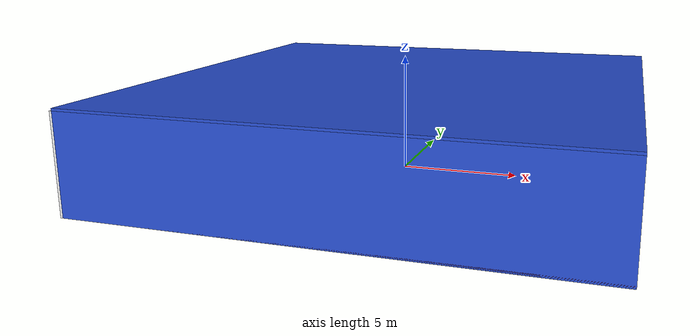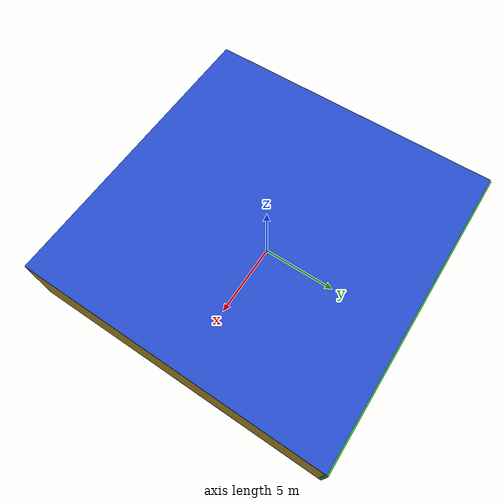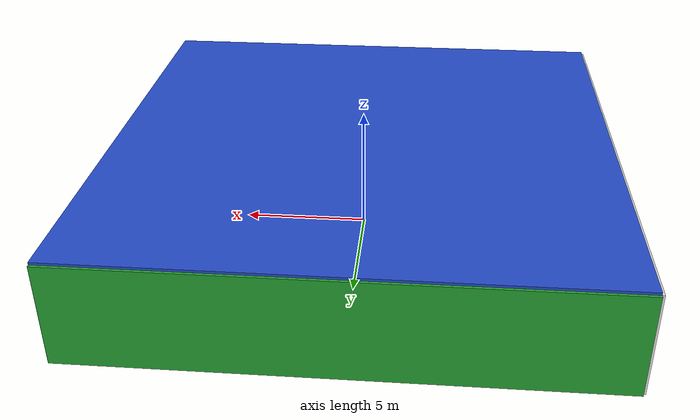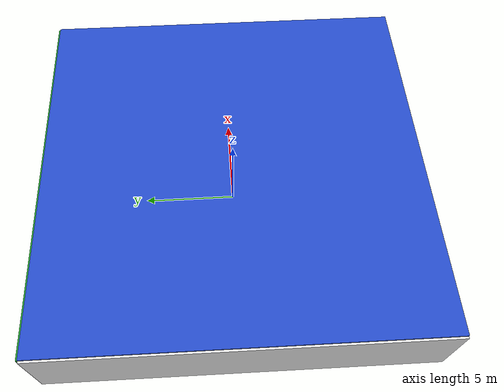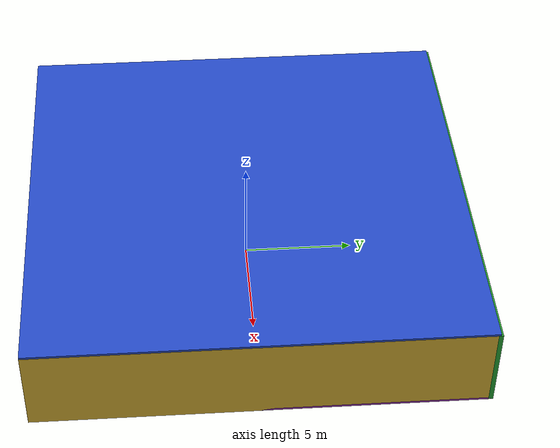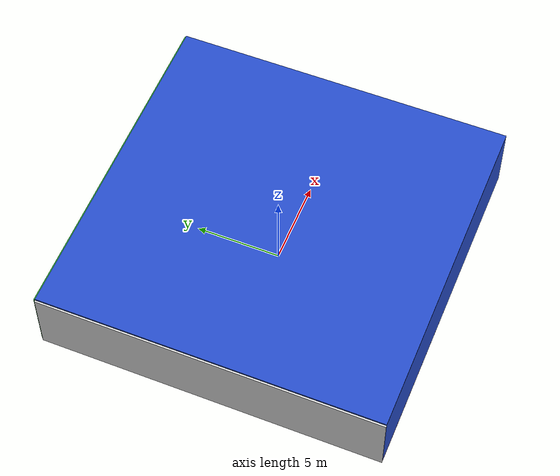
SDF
<sdf version="1.4">
 <world name="default">
  <physics type="ode">
   <max_step_size>0.001</max_step_size>
   <real_time_factor>1</real_time_factor>
   <real_time_update_rate>1000</real_time_update_rate>
   <gravity>0 0 -9.8</gravity>
  </physics>
  <scene><ambient>0.4 0.4 0.4 1</ambient><background>0.7 0.7 0.7 1</background><shadows>1</shadows></scene>
  <model name="Surrounding">
   <static>1</static>
   <link name="Ceiling">
    <collision name="Ceiling_Collision"><geometry><box><size>20 20 0.1</size></box></geometry></collision>
    <visual name="Ceiling_Visual">
     <geometry><box><size>20 20 0.1</size></box></geometry>
     <material>
      <script><uri>file://media/materials/scripts/gazebo.material</uri><name>Gazebo/BlueLaser</name></script>
     </material>
    </visual>
    <pose>0 0 4.05 0 0 0</pose>
   </link>
   <link name="Wall_South">
    <collision name="Wall_South_Collision">
     <geometry><box><size>20 0 4</size></box></geometry>
     <pose>0 0 2 0 -0 0</pose>
    </collision>
    <visual name="Wall_South_Visual">
     <pose>0 0 2 0 -0 0</pose>
     <geometry><box><size>20 0 4</size></box></geometry>
     <material>
      <script><uri>file://media/materials/scripts/gazebo.material</uri><name>Gazebo/BlueGlow</name></script>
     </material>
    </visual>
    <velocity_decay><linear>0</linear><angular>0</angular></velocity_decay>
    <pose>0 -10 0 0 -0 0</pose>
   </link>
   <link name="Wall_East">
    <collision name="Wall_21_Collision">
     <geometry><box><size>20 0 4</size></box></geometry>
     <pose>0 0 2 0 -0 0</pose>
    </collision>
    <visual name="Wall_21_Visual">
     <pose>0 0 2 0 -0 0</pose>
     <geometry><box><size>20 0 4</size></box></geometry>
     <material>
      <script><uri>file://media/materials/scripts/gazebo.material</uri><name>Gazebo/Gold</name></script>
     </material>
    </visual>
    <velocity_decay><linear>0</linear><angular>0</angular></velocity_decay>
    <pose>10 0 0 0 -0 1.5708</pose>
   </link>
   <link name="Wall_North">
    <collision name="Wall_22_Collision">
     <geometry><box><size>20 0.2 4</size></box></geometry>
     <pose>0 0 2 0 -0 0</pose>
    </collision>
    <visual name="Wall_22_Visual">
     <pose>0 0 2 0 -0 0</pose>
     <geometry><box><size>20 0.2 4</size></box></geometry>
     <material>
      <script><uri>file://media/materials/scripts/gazebo.material</uri><name>Gazebo/Green</name></script>
     </material>
    </visual>
    <velocity_decay><linear>0</linear><angular>0</angular></velocity_decay>
    <pose>0 10 0 0 -0 0</pose>
   </link>
   <link name="Wall_West">
    <collision name="Wall_23_Collision">
     <geometry><box><size>20 0.2 4</size></box></geometry>
     <pose>0 0 2 0 -0 0</pose>
    </collision>
    <visual name="Wall_23_Visual">
     <pose>0 0 2 0 -0 0</pose>
     <geometry><box><size>20 0.2 4</size></box></geometry>
     <material>
      <script><uri>file://media/materials/scripts/gazebo.material</uri><name>Gazebo/WhiteGlow</name></script>
     </material>
    </visual>
    <velocity_decay><linear>0</linear><angular>0</angular></velocity_decay>
    <pose>-10 0 0 0 0 -1.5708</pose>
   </link>
   <link name="Ground_link">
    <collision name="collision">
     <pose>0 0 .05 0 -0 0</pose>
     <geometry><box><size>20 20 0.1</size></box></geometry>
    </collision>
    <visual name="visual">
     <pose>0 0 .05 0 -0 0</pose>
     <geometry><box><size>20 20 0.1</size></box></geometry>
     <material>
      <script><uri>file://media/materials/scripts/gazebo.material</uri><name>Gazebo/PurpleGlow</name></script>
     </material>
    </visual>
   </link>
   <static>1</static>
  </model>
  <spherical_coordinates>
   <surface_model>EARTH_WGS84</surface_model>
   <latitude_deg>0</latitude_deg>
   <longitude_deg>0</longitude_deg>
   <elevation>0</elevation>
   <heading_deg>0</heading_deg>
  </spherical_coordinates>
  <light name="lightball_0" type="diffuse">
   <diffuse>0.8 0.8 0.8 1</diffuse>
   <specular>0.2 0.2 0.2 1</specular>
   <attenuation>
    <range>100</range>
    <constant>0.7</constant>
    <linear>0.01</linear>
    <quadratic>0.001</quadratic>
   </attenuation>
   <direction>-0.5 0.1 -0.9</direction>
   <pose>4.10242561337 7.74830921117 1.83213436348 0 0 0</pose>
  </light>
  <light name="lightball_1" type="diffuse">
   <diffuse>0.8 0.8 0.8 1</diffuse>
   <specular>0.2 0.2 0.2 1</specular>
   <attenuation>
    <range>100</range>
    <constant>0.7</constant>
    <linear>0.01</linear>
    <quadratic>0.001</quadratic>
   </attenuation>
   <direction>-0.5 0.1 -0.9</direction>
   <pose>-0.305508581111 3.30388645766 1.1805547533 0 0 0</pose>
  </light>
  <light name="lightball_2" type="diffuse">
   <diffuse>0.8 0.8 0.8 1</diffuse>
   <specular>0.2 0.2 0.2 1</specular>
   <attenuation>
    <range>100</range>
    <constant>0.7</constant>
    <linear>0.01</linear>
    <quadratic>0.001</quadratic>
   </attenuation>
   <direction>-0.5 0.1 -0.9</direction>
   <pose>7.12474737238 3.09097405076 2.03476398919 0 0 0</pose>
  </light>
  <light name="lightball_3" type="diffuse">
   <diffuse>0.8 0.8 0.8 1</diffuse>
   <specular>0.2 0.2 0.2 1</specular>
   <attenuation>
    <range>100</range>
    <constant>0.7</constant>
    <linear>0.01</linear>
    <quadratic>0.001</quadratic>
   </attenuation>
   <direction>-0.5 0.1 -0.9</direction>
   <pose>-0.396432072919 -4.073257605 3.87585032973 0 0 0</pose>
  </light>
  <light name="lightball_4" type="diffuse">
   <diffuse>0.8 0.8 0.8 1</diffuse>
   <specular>0.2 0.2 0.2 1</specular>
   <attenuation>
    <range>100</range>
    <constant>0.7</constant>
    <linear>0.01</linear>
    <quadratic>0.001</quadratic>
   </attenuation>
   <direction>-0.5 0.1 -0.9</direction>
   <pose>-5.74312201651 -0.664196004957 1.23513563836 0 0 0</pose>
  </light>
  <light name="lightball_5" type="diffuse">
   <diffuse>0.8 0.8 0.8 1</diffuse>
   <specular>0.2 0.2 0.2 1</specular>
   <attenuation>
    <range>100</range>
    <constant>0.7</constant>
    <linear>0.01</linear>
    <quadratic>0.001</quadratic>
   </attenuation>
   <direction>-0.5 0.1 -0.9</direction>
   <pose>4.03836998552 7.87184825224 1.40705987294 0 0 0</pose>
  </light>
  <light name="lightball_6" type="diffuse">
   <diffuse>0.8 0.8 0.8 1</diffuse>
   <specular>0.2 0.2 0.2 1</specular>
   <attenuation>
    <range>100</range>
    <constant>0.7</constant>
    <linear>0.01</linear>
    <quadratic>0.001</quadratic>
   </attenuation>
   <direction>-0.5 0.1 -0.9</direction>
   <pose>0.0827710848182 4.68637445431 2.72389740307 0 0 0</pose>
  </light>
  <light name="lightball_7" type="diffuse">
   <diffuse>0.8 0.8 0.8 1</diffuse>
   <specular>0.2 0.2 0.2 1</specular>
   <attenuation>
    <range>100</range>
    <constant>0.7</constant>
    <linear>0.01</linear>
    <quadratic>0.001</quadratic>
   </attenuation>
   <direction>-0.5 0.1 -0.9</direction>
   <pose>-7.88651345752 -3.74011180409 2.50483094148 0 0 0</pose>
  </light>
  <light name="lightball_8" type="diffuse">
   <diffuse>0.8 0.8 0.8 1</diffuse>
   <specular>0.2 0.2 0.2 1</specular>
   <attenuation>
    <range>100</range>
    <constant>0.7</constant>
    <linear>0.01</linear>
    <quadratic>0.001</quadratic>
   </attenuation>
   <direction>-0.5 0.1 -0.9</direction>
   <pose>2.65495168275 4.4927644581 1.54109050255 0 0 0</pose>
  </light>
  <light name="lightball_9" type="diffuse">
   <diffuse>0.8 0.8 0.8 1</diffuse>
   <specular>0.2 0.2 0.2 1</specular>
   <attenuation>
    <range>100</range>
    <constant>0.7</constant>
    <linear>0.01</linear>
    <quadratic>0.001</quadratic>
   </attenuation>
   <direction>-0.5 0.1 -0.9</direction>
   <pose>3.75970352156 -8.61566825278 3.12162062465 0 0 0</pose>
  </light>
  <include><uri>model://table</uri><pose>-8.28376164652 -7.83504085947 0 0 0 0.899789241944</pose></include>
  <include><uri>model://cabinet</uri><pose>-4.15560411266 -1.92141812185 0 0 0 2.098109724</pose></include>
  <include><uri>model://cabinet</uri><pose>-4.95077266246 4.10886789542 0 0 0 1.9689561545</pose></include>
  <include>
   <uri>model://construction_cone</uri>
   <pose>4.92598395144 7.63148334977 0 0 0 0.723119041534</pose>
  </include>
 </world>
</sdf>

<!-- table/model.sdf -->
<sdf version="1.5">
  <model name="table">
    <static>true</static>
    <link name="link">
      <collision name="surface">
        <pose>0 0 1.0 0 0 0</pose>
        <geometry>
          <box>
            <size>1.5 0.8 0.03</size>
          </box>
        </geometry>
        <surface>
          <friction>
            <ode>
              <mu>0.6</mu>
              <mu2>0.6</mu2>
            </ode>
          </friction>
        </surface>
      </collision>
      <visual name="visual1">
        <pose>0 0 1.0 0 0 0</pose>
        <geometry>
          <box>
            <size>1.5 0.8 0.03</size>
          </box>
        </geometry>
        <material>
          <script>
            <uri>model://media/materials/scripts/gazebo.material</uri>
            <name>Gazebo/Wood</name>
          </script>
        </material>
      </visual>
      <collision name="front_left_leg">
        <pose>0.68 0.38 0.5 0 0 0</pose>
        <geometry>
          <cylinder>
            <radius>0.02</radius>
            <length>1.0</length>
          </cylinder>
        </geometry>
      </collision>
      <visual name="front_left_leg">
        <pose>0.68 0.38 0.5 0 0 0</pose>
        <geometry>
          <cylinder>
            <radius>0.02</radius>
            <length>1.0</length>
          </cylinder>
        </geometry>
        <material>
          <script>
            <uri>model://media/materials/scripts/gazebo.material</uri>
            <name>Gazebo/Grey</name>
          </script>
        </material>
      </visual>
      <collision name="front_right_leg">
        <pose>0.68 -0.38 0.5 0 0 0</pose>
        <geometry>
          <cylinder>
            <radius>0.02</radius>
            <length>1.0</length>
          </cylinder>
        </geometry>
      </collision>
      <visual name="front_right_leg">
        <pose>0.68 -0.38 0.5 0 0 0</pose>
        <geometry>
          <cylinder>
            <radius>0.02</radius>
            <length>1.0</length>
          </cylinder>
        </geometry>
        <material>
          <script>
            <uri>model://media/materials/scripts/gazebo.material</uri>
            <name>Gazebo/Grey</name>
          </script>
        </material>
      </visual>
      <collision name="back_right_leg">
        <pose>-0.68 -0.38 0.5 0 0 0</pose>
        <geometry>
          <cylinder>
            <radius>0.02</radius>
            <length>1.0</length>
          </cylinder>
        </geometry>
      </collision>
      <visual name="back_right_leg">
        <pose>-0.68 -0.38 0.5 0 0 0</pose>
        <geometry>
          <cylinder>
            <radius>0.02</radius>
            <length>1.0</length>
          </cylinder>
        </geometry>
        <material>
          <script>
            <uri>model://media/materials/scripts/gazebo.material</uri>
            <name>Gazebo/Grey</name>
          </script>
        </material>
      </visual>
      <collision name="back_left_leg">
        <pose>-0.68 0.38 0.5 0 0 0</pose>
        <geometry>
          <cylinder>
            <radius>0.02</radius>
            <length>1.0</length>
          </cylinder>
        </geometry>
      </collision>
      <visual name="back_left_leg">
        <pose>-0.68 0.38 0.5 0 0 0</pose>
        <geometry>
          <cylinder>
            <radius>0.02</radius>
            <length>1.0</length>
          </cylinder>
        </geometry>
        <material>
          <script>
            <uri>model://media/materials/scripts/gazebo.material</uri>
            <name>Gazebo/Grey</name>
          </script>
        </material>
      </visual>
    </link>
  </model>
</sdf>

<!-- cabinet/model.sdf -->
<sdf version="1.5">
  <model name="cabinet">
    <static>true</static>
    <link name="cabinet_bottom_plate">
      <inertial>
        <pose>0 0 -1 0 0 0</pose>
        <inertia>
          <ixx>2.050000</ixx>
          <ixy>0</ixy>
          <ixz>0</ixz>
          <iyy>2.050000</iyy>
          <iyz>0</iyz>
          <izz>2.050000</izz>
        </inertia>
        <mass>25.000000</mass>
      </inertial>
      <collision name="cabinet_bottom_plate_geom">
        <pose>0 0 0.010000 0 0 0</pose>
        <geometry>
          <box>
            <size>0.450000 0.450000 0.020000</size>
          </box>
        </geometry>
      </collision>
      <visual name="cabinet_bottom_plate_geom_visual">
        <pose>0 0 0.010000 0 0 0</pose>
        <geometry>
          <box>
            <size>0.450000 0.450000 0.020000</size>
          </box>
        </geometry>
        <material>
          <script>
            <uri>model://media/materials/scripts/gazebo.material</uri>
            <name>Gazebo/Wood</name>
          </script>
        </material>
      </visual>
      <collision name="cabinet_bottom_plate_geom_cabinet_back_plate">
        <pose>0.235000 0 0.510000 0 0 0</pose>
        <geometry>
          <box>
            <size>0.020000 0.450000 1.020000</size>
          </box>
        </geometry>
      </collision>
      <visual name="cabinet_bottom_plate_geom_cabinet_back_plate_visual">
        <pose>0.235000 0 0.510000 0 0 0</pose>
        <geometry>
          <box>
            <size>0.020000 0.450000 1.020000</size>
          </box>
        </geometry>
        <material>
          <script>
            <uri>model://media/materials/scripts/gazebo.material</uri>
            <name>Gazebo/Wood</name>
          </script>
        </material>
      </visual>
      <collision name="cabinet_bottom_plate_geom_cabinet_left_plate">
        <pose>0 0.235000 0.510000 0 0 0</pose>
        <geometry>
          <box>
            <size>0.450000 0.020000 1.020000</size>
          </box>
        </geometry>
      </collision>
      <visual name="cabinet_bottom_plate_geom_cabinet_left_plate_visual">
        <pose>0 0.235000 0.510000 0 0 0</pose>
        <geometry>
          <box>
            <size>0.450000 0.020000 1.020000</size>
          </box>
        </geometry>
        <material>
          <script>
            <uri>model://media/materials/scripts/gazebo.material</uri>
            <name>Gazebo/Wood</name>
          </script>
        </material>
      </visual>
      <collision name="cabinet_bottom_plate_geom_cabinet_middle_plate">
        <pose>0 0 0.510000 0 0 0</pose>
        <geometry>
          <box>
            <size>0.450000 0.450000 0.020000</size>
          </box>
        </geometry>
      </collision>
      <visual name="cabinet_bottom_plate_geom_cabinet_middle_plate_visual">
        <pose>0 0 0.510000 0 0 0</pose>
        <geometry>
          <box>
            <size>0.450000 0.450000 0.020000</size>
          </box>
        </geometry>
        <material>
          <script>
            <uri>model://media/materials/scripts/gazebo.material</uri>
            <name>Gazebo/Wood</name>
          </script>
        </material>
      </visual>
      <collision name="cabinet_bottom_plate_geom_cabinet_right_plate">
        <pose>0 -0.235000 0.510000 0 0 0</pose>
        <geometry>
          <box>
            <size>0.450000 0.020000 1.020000</size>
          </box>
        </geometry>
      </collision>
      <visual name="cabinet_bottom_plate_geom_cabinet_right_plate_visual">
        <pose>0 -0.235000 0.510000 0 0 0</pose>
        <geometry>
          <box>
            <size>0.450000 0.020000 1.020000</size>
          </box>
        </geometry>
        <material>
          <script>
            <uri>model://media/materials/scripts/gazebo.material</uri>
            <name>Gazebo/Wood</name>
          </script>
        </material>
      </visual>
      <collision name="cabinet_bottom_plate_geom_cabinet_top_plate">
        <pose>0 0 1.010000 0 0 0</pose>
        <geometry>
          <box>
            <size>0.450000 0.450000 0.020000</size>
          </box>
        </geometry>
      </collision>
      <visual name="cabinet_bottom_plate_geom_cabinet_top_plate_visual">
        <pose>0 0 1.010000 0 0 0</pose>
        <geometry>
          <box>
            <size>0.450000 0.450000 0.020000</size>
          </box>
        </geometry>
        <material>
          <script>
            <uri>model://media/materials/scripts/gazebo.material</uri>
            <name>Gazebo/Wood</name>
          </script>
        </material>
      </visual>
    </link>
  </model>
</sdf>

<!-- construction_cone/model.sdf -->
<sdf version="1.5">
  <model name="Construction Cone">
    <link name="link">
      <collision name="collision">
        <geometry>
          <mesh>
            <scale>10 10 10</scale>
            <uri>file://isr-testbed/construction_cone/meshes/construction_cone.dae</uri>
          </mesh>
        </geometry>
      </collision>
      <visual name="visual">
        <geometry>
          <mesh>
            <scale>10 10 10</scale>
            <uri>file://isr-testbed/construction_cone/meshes/construction_cone.dae</uri>
          </mesh>
        </geometry>
      </visual>
    </link>
  </model>
</sdf>
